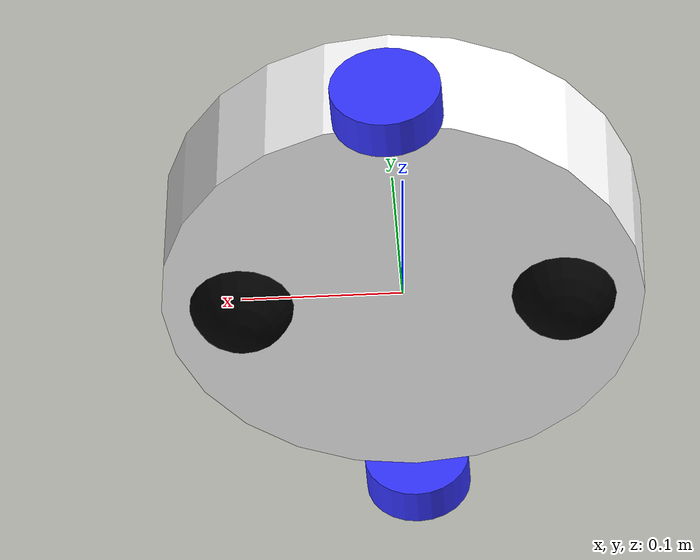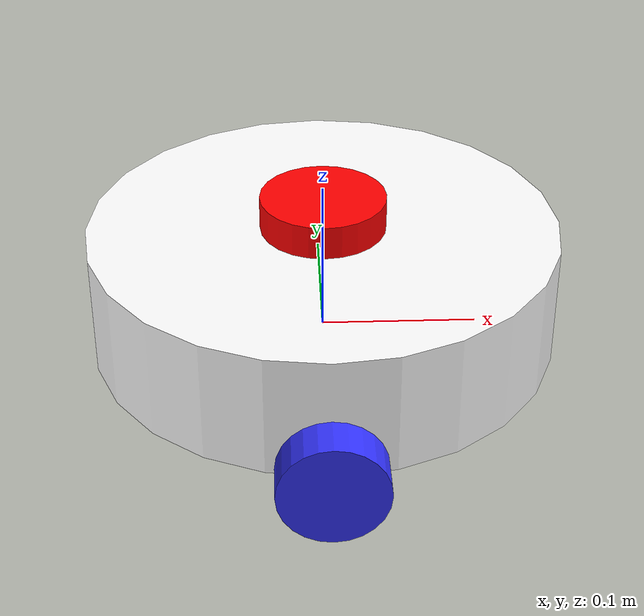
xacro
<?xml version="1.0"?>
<robot xmlns:xacro="http://www.ros.org/wiki/xacro"  name="robot">

    <xacro:arg name="use_ros2_control" default="true"/>

    <!-- Corrected the typo in xacro:include -->
    <xacro:if value="$(arg use_ros2_control)">
        <xacro:include filename="ros2_control.xacro"/>
    </xacro:if>
    <xacro:unless value="$(arg use_ros2_control)">
        <xacro:include filename="gazebo_control.xacro"/>
    </xacro:unless>

    <!-- Corrected the typo in xacro:include -->
    <xacro:include filename="robot_core.xacro"/>

    <!-- Corrected the typo in xacro:include -->
    <xacro:include filename="lidar.xacro"/>

</robot>

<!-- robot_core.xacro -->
<robot xmlns:xacro="http://www.ros.org/wiki/xacro" name="my_robot">

    <!-- Include inertial macros -->
    <xacro:include filename="inertial_macros.xacro"/>

    <!-- Declaring colours used -->
    <material name="white">
        <color rgba="1 1 1 1"/>
    </material>

    <material name="orange">
        <color rgba="1 0.3 0.1 1"/>
    </material>

    <material name="blue">
        <color rgba="0.2 0.2 1 1"/>
    </material>

    <material name="black">
        <color rgba="0 0 0 1"/>
    </material>

    <material name="red">
        <color rgba="1 0 0 1"/>
    </material>

    <!-- BASE LINK -->
    <link name="base_link">
    </link>

    <!-- BASE_FOOTPRINT LINK -->
    <joint name="base_footprint_joint" type="fixed">
       <parent link="base_link"/>
       <child link="base_footprint"/>
       <origin xyz="0 0 0" rpy="0 0 0"/>
    </joint>

    <link name="base_footprint">
    </link>

    <!-- CHASSIS LINK -->
    <joint name="chassis_joint" type="fixed">
        <parent link="base_link"/>
        <child link="chassis"/>
        <origin xyz="0 0 0"/>
    </joint>

    <link name="chassis">
        <visual>
            <origin xyz="0 0 0.0335" rpy="0 0 0"/>
            <geometry>
                <cylinder length="0.08" radius="0.15" />
            </geometry>
            <material name="white"/>
        </visual>
        <collision>
            <origin xyz="0 0 0.0335" rpy="0 0 0"/>
            <geometry>
                <cylinder length="0.08" radius="0.15" />
            </geometry>
        </collision>
        <xacro:inertial_cylinder mass="0.5" length="0.08" radius="0.15">
            <origin xyz="0 0 0.0335" rpy="0 0 0"/>
        </xacro:inertial_cylinder>
    </link>

    <gazebo reference="chassis">
            <material>Gazebo/White</material>
    </gazebo>

    <!-- LEFT WHEEL -->
    <joint name="left_wheel_joint" type="continuous">
        <parent link="base_link"/>
        <child link="left_wheel"/>
        <origin xyz="0 0.163 0" rpy="-${pi/2} 0 0"/>
        <axis xyz="0 0 1"/>
    </joint>

    <link name="left_wheel">
        <visual>
            <geometry>
                <cylinder length="0.026" radius="0.0335" />
            </geometry>
            <material name="blue"/>
        </visual>
        <collision>
            <geometry>
                <sphere radius="0.0335" />
            </geometry>
        </collision>
        <xacro:inertial_cylinder mass="0.1" length="0.026" radius="0.0335">
            <origin xyz="0 0 0" rpy="0 0 0"/>
        </xacro:inertial_cylinder>
    </link>

    <gazebo reference="left_wheel">
          <material>Gazebo/Blue</material>
    </gazebo>

    <!-- RIGHT WHEEL -->
    <joint name="right_wheel_joint" type="continuous">
        <parent link="base_link"/>
        <child link="right_wheel"/>
        <origin xyz="0 -0.163 0" rpy="${pi/2} 0 0"/>
        <axis xyz="0 0 -1"/>
    </joint>

    <link name="right_wheel">
        <visual>
            <geometry>
                <cylinder length="0.026" radius="0.0335" />
            </geometry>
            <material name="blue"/>
        </visual>
        <collision>
            <geometry>
                <sphere radius="0.0335" />
            </geometry>
        </collision>
        <xacro:inertial_cylinder mass="0.1" length="0.026" radius="0.0335">
            <origin xyz="0 0 0" rpy="0 0 0"/>
        </xacro:inertial_cylinder>

    </link>

    <gazebo reference="right_wheel">
          <material>Gazebo/Blue</material>
   </gazebo>

    <!-- FRONT CASTER WHEEL -->
    <joint name="front_caster_wheel_joint" type="fixed">
        <parent link="chassis"/>
        <child link="front_caster_wheel"/>
        <origin xyz="0.1 0 0" rpy="0 0 0"/>
    </joint>

    <link name="front_caster_wheel">
        <visual>
            <geometry>
                <sphere radius="0.0335" />
            </geometry>
            <material name="black"/>
        </visual>
        <collision>
            <geometry>
                <sphere radius="0.0335" />
            </geometry>
        </collision>
        <xacro:inertial_sphere mass="0.1" radius="0.0335">
            <origin xyz="0 0 0" rpy="0 0 0"/>
        </xacro:inertial_sphere>
    </link>

    <gazebo reference="front_caster_wheel">
            <material>Gazebo/Black</material>
            <mu1 value="0.001"/>
            <mu2 value="0.001"/>
    </gazebo>

    <!-- BACK CASTER WHEEL -->
    <joint name="back_caster_wheel_joint" type="fixed">
        <parent link="chassis"/>
        <child link="back_caster_wheel"/>
        <origin xyz="-0.1 0 0" rpy="0 0 0"/>
    </joint>

    <link name="back_caster_wheel">
        <visual>
            <geometry>
                <sphere radius="0.0335" />
            </geometry>
            <material name="black"/>
        </visual>
        <collision>
            <geometry>
                <sphere radius="0.0335" />
            </geometry>
        </collision>
        <xacro:inertial_sphere mass="0.1" radius="0.0335">
            <origin xyz="0 0 0" rpy="0 0 0"/>
        </xacro:inertial_sphere>
    </link>

    <gazebo reference="back_caster_wheel">
            <material>Gazebo/Black</material>
            <mu1 value="0.001"/>
            <mu2 value="0.001"/>
    </gazebo>

</robot>

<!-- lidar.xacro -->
<robot xmlns:xacro="http://www.ros.org/wiki/xacro" >

   <joint name="laser_joint" type="fixed">
      <parent link="chassis"/>
      <child link="laser_frame"/>
      <origin xyz="0 0 0.08" rpy="0 0 0"/>
    </joint>

    <link name="laser_frame">
     <visual>
            <geometry>
                <cylinder length="0.03" radius="0.04" />
            </geometry>
            <material name="red"/>
        </visual>
        <collision>
            <geometry>
                <cylinder length="0.03" radius="0.04" />
            </geometry>
        </collision>
        <xacro:inertial_cylinder mass="0.1" length="0.03" radius="0.04">
            <origin xyz="0 0 0.08" rpy="0 0 0"/>
        </xacro:inertial_cylinder>
    </link>

    <gazebo reference="laser_frame">
        <sensor name="laser" type="ray">
           <pose> 0 0 0 0 0 0 </pose>
           <visualize>true</visualize>
           <update_rate>10</update_rate>
           <ray>
              <scan>
                 <horizontal>
                    <samples>360</samples>

                    <min_angle>-3.14</min_angle>
                    <max_angle>3.14</max_angle>
                 </horizontal>
               </scan>
               <range>
                   <min>0.3</min>
                   <max>12</max>
                   <resolution>0.01</resolution>
               </range>
           </ray>
           <plugin name="laser_controller" filename="libgazebo_ros_ray_sensor.so">
              <ros>
                 <argument>~/out:=scan</argument>
              </ros>
              <output_type>sensor_msgs/LaserScan</output_type>
              <frame_name>laser_frame</frame_name>
            </plugin>
        </sensor>

        <material>Gazebo/Red</material>
    </gazebo>

</robot>
